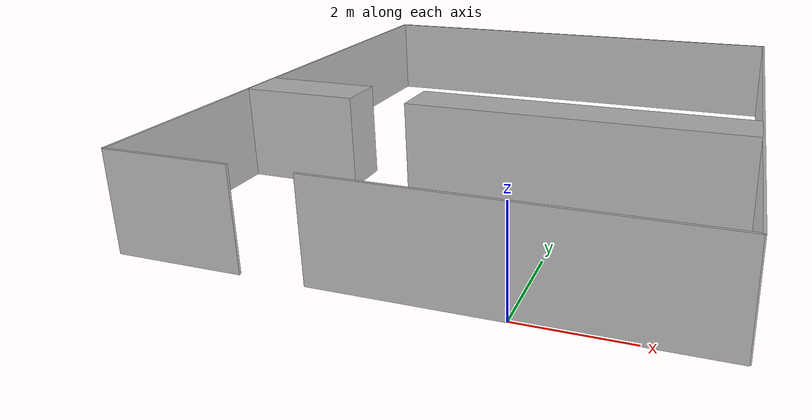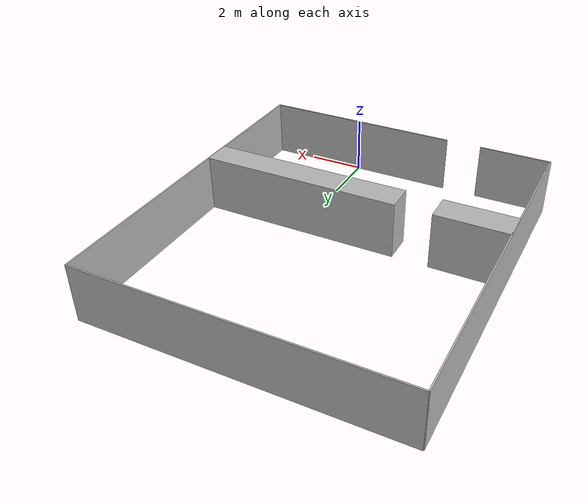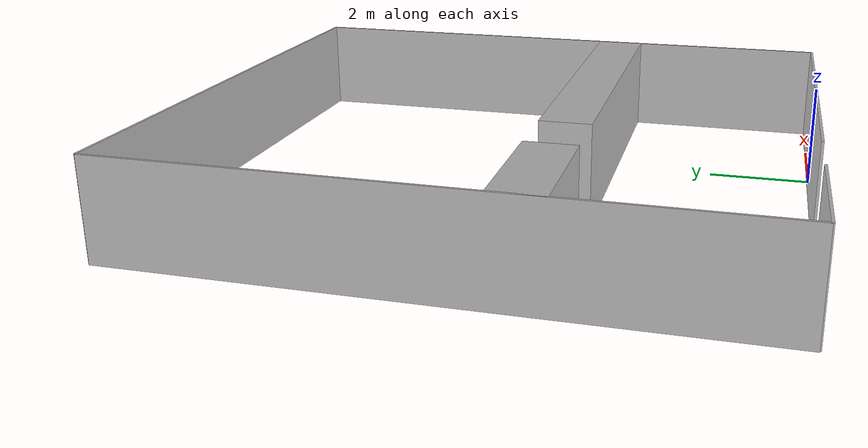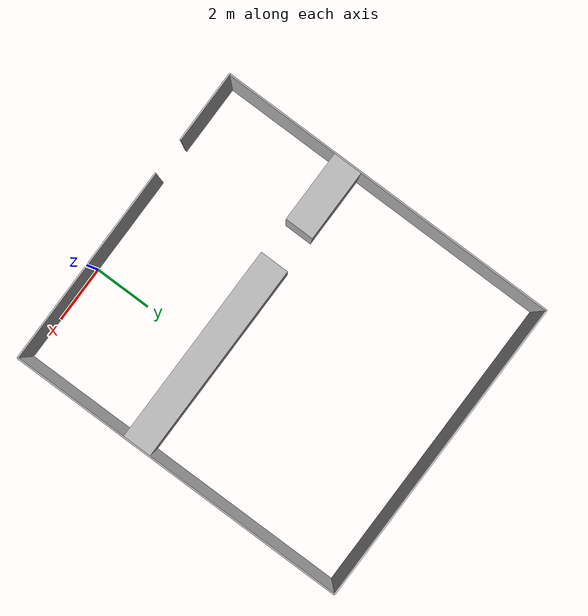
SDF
<?xml version='1.0'?>
<sdf version="1.4">
<model name="hri_hk_studio">
  <pose>0 0 0 0 0 0</pose>
  <static>true</static>

    <link name="wall1">
      <pose>0 0 1 0 0 0</pose>
      <inertial>
        <mass>1000.0</mass>
        <inertia> <!-- interias are tricky to compute -->
          <!-- http://answers.gazebosim.org/question/4372/the-inertia-matrix-explained/ -->
          <ixx>0.083</ixx>       <!-- for a box: ixx = 0.083 * mass * (y*y + z*z) -->
          <ixy>0.0</ixy>         <!-- for a box: ixy = 0 -->
          <ixz>0.0</ixz>         <!-- for a box: ixz = 0 -->
          <iyy>0.083</iyy>       <!-- for a box: iyy = 0.083 * mass * (x*x + z*z) -->
          <iyz>0.0</iyz>         <!-- for a box: iyz = 0 -->
          <izz>0.083</izz>       <!-- for a box: izz = 0.083 * mass * (x*x + y*y) -->
        </inertia>
      </inertial>
      <collision name="collision">
        <geometry>
          <box>
            <size>7.0    0.0500    2.0000</size>
          </box>
        </geometry>
      </collision>
      <visual name="visual">
        <geometry>
          <box>
            <size>7.0    0.0500    2.0000</size>
          </box>
        </geometry>
      </visual>
    </link>

    <link name="wall2">
      <pose>-6 0 1 0 0 0</pose>
      <inertial>
        <mass>1000.0</mass>
        <inertia> <!-- interias are tricky to compute -->
          <!-- http://answers.gazebosim.org/question/4372/the-inertia-matrix-explained/ -->
          <ixx>0.083</ixx>       <!-- for a box: ixx = 0.083 * mass * (y*y + z*z) -->
          <ixy>0.0</ixy>         <!-- for a box: ixy = 0 -->
          <ixz>0.0</ixz>         <!-- for a box: ixz = 0 -->
          <iyy>0.083</iyy>       <!-- for a box: iyy = 0.083 * mass * (x*x + z*z) -->
          <iyz>0.0</iyz>         <!-- for a box: iyz = 0 -->
          <izz>0.083</izz>       <!-- for a box: izz = 0.083 * mass * (x*x + y*y) -->
        </inertia>
      </inertial>
      <collision name="collision">
        <geometry>
          <box>
            <size>2.5    0.0500    2.0000</size>
          </box>
        </geometry>
      </collision>
      <visual name="visual">
        <geometry>
          <box>
            <size>2.5    0.0500    2.0000</size>
          </box>
        </geometry>
      </visual>
    </link>

    <link name="wall3">
      <pose>-7.25 6 1 0 0 0</pose>
      <inertial>
        <mass>1000.0</mass>
        <inertia> <!-- interias are tricky to compute -->
          <!-- http://answers.gazebosim.org/question/4372/the-inertia-matrix-explained/ -->
          <ixx>0.083</ixx>       <!-- for a box: ixx = 0.083 * mass * (y*y + z*z) -->
          <ixy>0.0</ixy>         <!-- for a box: ixy = 0 -->
          <ixz>0.0</ixz>         <!-- for a box: ixz = 0 -->
          <iyy>0.083</iyy>       <!-- for a box: iyy = 0.083 * mass * (x*x + z*z) -->
          <iyz>0.0</iyz>         <!-- for a box: iyz = 0 -->
          <izz>0.083</izz>       <!-- for a box: izz = 0.083 * mass * (x*x + y*y) -->
        </inertia>
      </inertial>
      <collision name="collision">
        <geometry>
          <box>
            <size>0.0500    12    2.0000</size>
          </box>
        </geometry>
      </collision>
      <visual name="visual">
        <geometry>
          <box>
            <size>0.0500    12    2.0000</size>
          </box>
        </geometry>
      </visual>
    </link>

    <link name="wall4">
      <pose>-6 4.5 1 0 0 0</pose>
      <inertial>
        <mass>1000.0</mass>
        <inertia> <!-- interias are tricky to compute -->
          <!-- http://answers.gazebosim.org/question/4372/the-inertia-matrix-explained/ -->
          <ixx>0.083</ixx>       <!-- for a box: ixx = 0.083 * mass * (y*y + z*z) -->
          <ixy>0.0</ixy>         <!-- for a box: ixy = 0 -->
          <ixz>0.0</ixz>         <!-- for a box: ixz = 0 -->
          <iyy>0.083</iyy>       <!-- for a box: iyy = 0.083 * mass * (x*x + z*z) -->
          <iyz>0.0</iyz>         <!-- for a box: iyz = 0 -->
          <izz>0.083</izz>       <!-- for a box: izz = 0.083 * mass * (x*x + y*y) -->
        </inertia>
      </inertial>
      <collision name="collision">
        <geometry>
          <box>
            <size>2.5    1    2.0000</size>
          </box>
        </geometry>
      </collision>
      <visual name="visual">
        <geometry>
          <box>
            <size>2.5    1    2.0000</size>
          </box>
        </geometry>
      </visual>
    </link>

    <link name="wall5">
      <pose>-1.875 12 1 0 0 0</pose>
      <inertial>
        <mass>1000.0</mass>
        <inertia> <!-- interias are tricky to compute -->
          <!-- http://answers.gazebosim.org/question/4372/the-inertia-matrix-explained/ -->
          <ixx>0.083</ixx>       <!-- for a box: ixx = 0.083 * mass * (y*y + z*z) -->
          <ixy>0.0</ixy>         <!-- for a box: ixy = 0 -->
          <ixz>0.0</ixz>         <!-- for a box: ixz = 0 -->
          <iyy>0.083</iyy>       <!-- for a box: iyy = 0.083 * mass * (x*x + z*z) -->
          <iyz>0.0</iyz>         <!-- for a box: iyz = 0 -->
          <izz>0.083</izz>       <!-- for a box: izz = 0.083 * mass * (x*x + y*y) -->
        </inertia>
      </inertial>
      <collision name="collision">
        <geometry>
          <box>
            <size>10.75    0.0500    2.0000</size>
          </box>
        </geometry>
      </collision>
      <visual name="visual">
        <geometry>
          <box>
            <size>10.75    0.0500    2.0000</size>
          </box>
        </geometry>
      </visual>
    </link>

    <link name="wall6">
      <pose>3.5 6 1 0 0 0</pose>
      <inertial>
        <mass>1000.0</mass>
        <inertia> <!-- interias are tricky to compute -->
          <!-- http://answers.gazebosim.org/question/4372/the-inertia-matrix-explained/ -->
          <ixx>0.083</ixx>       <!-- for a box: ixx = 0.083 * mass * (y*y + z*z) -->
          <ixy>0.0</ixy>         <!-- for a box: ixy = 0 -->
          <ixz>0.0</ixz>         <!-- for a box: ixz = 0 -->
          <iyy>0.083</iyy>       <!-- for a box: iyy = 0.083 * mass * (x*x + z*z) -->
          <iyz>0.0</iyz>         <!-- for a box: iyz = 0 -->
          <izz>0.083</izz>       <!-- for a box: izz = 0.083 * mass * (x*x + y*y) -->
        </inertia>
      </inertial>
      <collision name="collision">
        <geometry>
          <box>
            <size>0.0500    12    2.0000</size>
          </box>
        </geometry>
      </collision>
      <visual name="visual">
        <geometry>
          <box>
            <size>0.0500    12    2.0000</size>
          </box>
        </geometry>
      </visual>
    </link>

    <link name="wall7">
      <pose>0 4.5 1 0 0 0</pose>
      <inertial>
        <mass>1000.0</mass>
        <inertia> <!-- interias are tricky to compute -->
          <!-- http://answers.gazebosim.org/question/4372/the-inertia-matrix-explained/ -->
          <ixx>0.083</ixx>       <!-- for a box: ixx = 0.083 * mass * (y*y + z*z) -->
          <ixy>0.0</ixy>         <!-- for a box: ixy = 0 -->
          <ixz>0.0</ixz>         <!-- for a box: ixz = 0 -->
          <iyy>0.083</iyy>       <!-- for a box: iyy = 0.083 * mass * (x*x + z*z) -->
          <iyz>0.0</iyz>         <!-- for a box: iyz = 0 -->
          <izz>0.083</izz>       <!-- for a box: izz = 0.083 * mass * (x*x + y*y) -->
        </inertia>
      </inertial>
      <collision name="collision">
        <geometry>
          <box>
            <size>7    1    2.0000</size>
          </box>
        </geometry>
      </collision>
      <visual name="visual">
        <geometry>
          <box>
            <size>7    1    2.0000</size>
          </box>
        </geometry>
      </visual>
    </link>

  </model>
</sdf>
